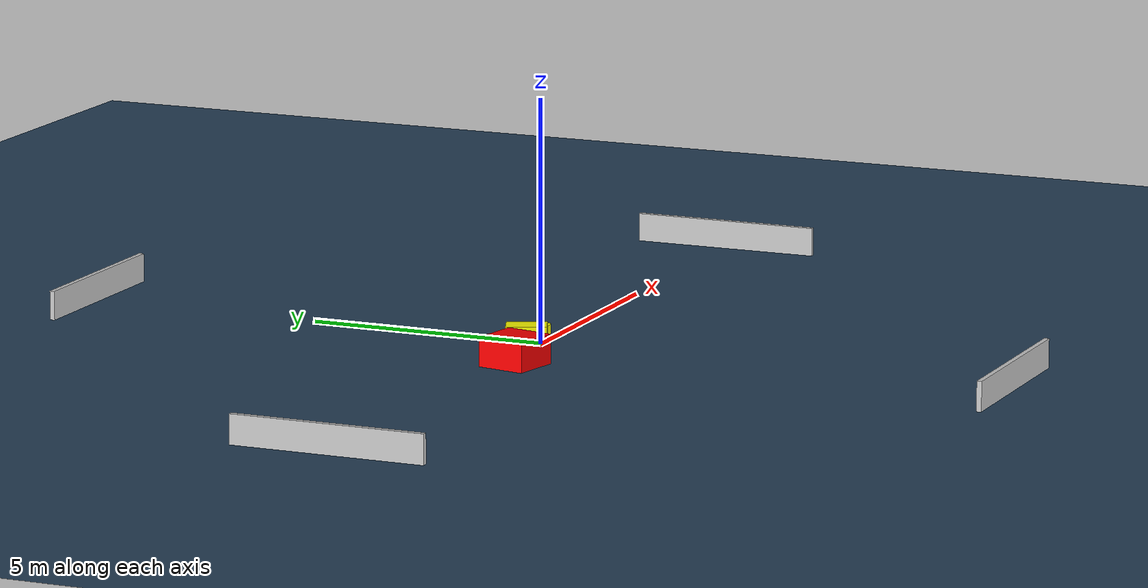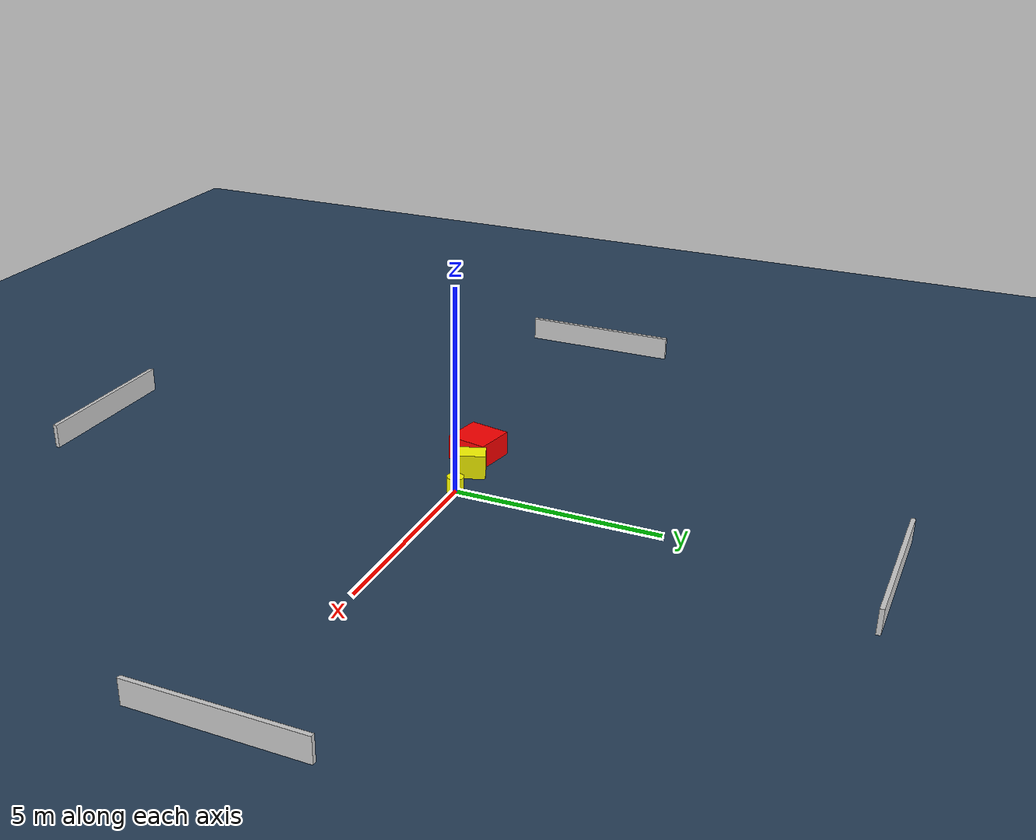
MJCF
<?xml version="1.0" ?>
<mujoco model="generated_environment">
  <option timestep="0.01" integrator="RK4" cone="elliptic"/>
  <default>
    <geom density="1"/>
  </default>
  <asset>
    <texture builtin="gradient" height="3072" name="skybox" rgb1="0.3 0.5 0.7" rgb2="0 0 0" type="skybox" width="512"/>
    <texture builtin="checker" height="300" name="groundplane" rgb1="0.2 0.3 0.4" rgb2="0.1 0.2 0.3" type="2d" width="300"/>
    <material name="groundplane" reflectance="0.2" texrepeat="5 5" texture="groundplane"/>
  </asset>
  <worldbody>
    <light dir="0 0 -1" directional="true" pos="0 0 1.5"/>
    <geom condim="3" friction="0.5 0.005 0.001" material="groundplane" name="floor" pos="0 0 0" size="0 0 0.05" type="plane"/>
    <body name="walls">
      <geom name="wall_1" condim="4" pos="-10.0 0.0 0.3" rgba="0.800000011920929 0.800000011920929 0.800000011920929 1.0" size="0.05 2.0 0.3" type="box"/>
      <geom name="wall_2" condim="4" pos="10.0 0.0 0.3" rgba="0.800000011920929 0.800000011920929 0.800000011920929 1.0" size="0.05 2.0 0.3" type="box"/>
      <geom name="wall_3" condim="4" pos="0.0 -10.0 0.3" rgba="0.800000011920929 0.800000011920929 0.800000011920929 1.0" size="2.0 0.05 0.3" type="box"/>
      <geom name="wall_4" condim="4" pos="0.0 10.0 0.3" rgba="0.800000011920929 0.800000011920929 0.800000011920929 1.0" size="2.0 0.05 0.3" type="box"/>
    </body>
    <body name="robot">
      <joint name="joint_x" type="slide" pos="0 0 0" axis="1 0 0"/>
      <joint name="joint_y" type="slide" pos="0 0 0" axis="0 1 0"/>
      <geom name="robot" type="cylinder" pos="0.0 0.0 0.2" size="0.2 0.2 0.0" mass="5.0" friction="1.0 0.005 0.0001" condim="4" rgba="1.0 1.0 0.0 1.0"/>
    </body>
    <body name="obstacle_1_movable">
      <geom name="obstacle_1_movable" condim="4" pos="-0.9532248927139095 -0.0973003830775315 0.3" euler="0 0 201.49615722336074" friction="0.0 0.005 0.001" rgba="1.0 1.0 0.0 1.0" size="0.24892799875693403 0.4097964528777321 0.3" type="box" mass="0.1"/>
      <joint type="free"/>
    </body>
    <body name="obstacle_2_static">
      <geom name="obstacle_2_static" condim="4" pos="-1.9403679271507053 -0.2861241983790332 0.3" euler="0 0 78.66554915684807" friction="0.0 0.005 0.001" rgba="1.0 0.0 0.0 1.0" size="0.5100838861652006 0.5146248551677111 0.3" type="box"/>
    </body>
  </worldbody>
  <actuator>
    <motor name="actuator_x" joint="joint_x" gear="1" ctrlrange="-1 1"/>
    <motor name="actuator_y" joint="joint_y" gear="1" ctrlrange="-1 1"/>
  </actuator>
</mujoco>
